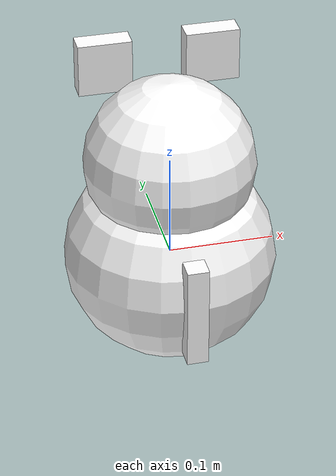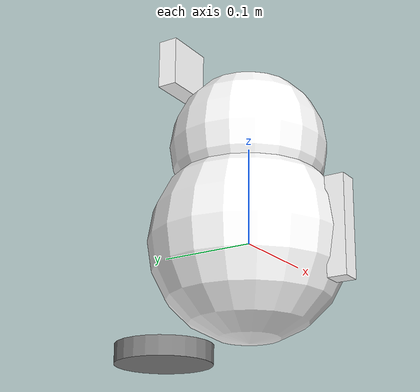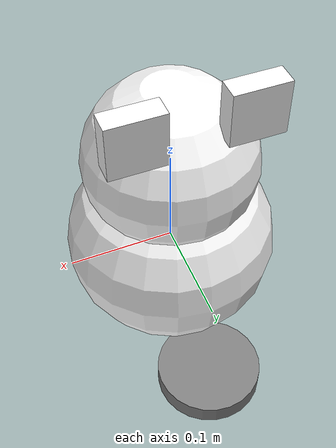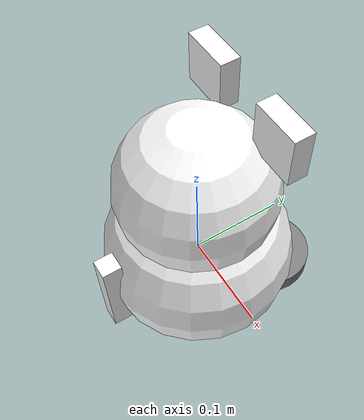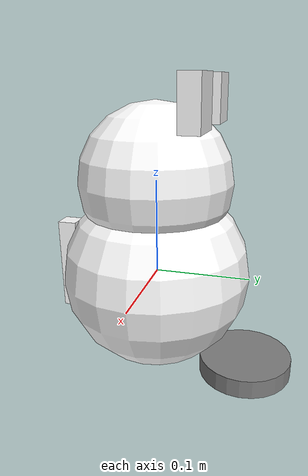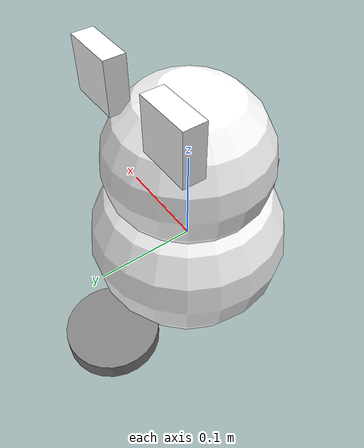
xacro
<?xml version="1.0"?>
<robot name="expressive_robot" xmlns:xacro="http://www.ros.org/wiki/xacro">
  <!-- Main body -->
  <link name="base_link">
    <visual>
      <geometry>
        <sphere radius="0.1"/>
      </geometry>
      <material name="white">
        <color rgba="1 1 1 1"/>
      </material>
    </visual>
  </link>

  <!-- Omni-directional wheels -->
  <link name="wheel_front">
    <visual>
      <geometry>
        <cylinder radius="0.05" length="0.02"/>
      </geometry>
      <material name="gray">
        <color rgba="0.5 0.5 0.5 1"/>
      </material>
    </visual>
  </link>
  <joint name="wheel_front_joint" type="continuous">
    <parent link="base_link"/>
    <child link="wheel_front"/>
    <origin xyz="0 0.1 -0.1" rpy="0 0 0"/>
    <axis xyz="0 0 1"/>
  </joint>

  <!-- Repeat for other omni-directional wheels -->

  <!-- Head with 360° turn capability -->
  <joint name="head_joint" type="continuous">
    <parent link="base_link"/>
    <child link="head"/>
    <origin xyz="0 0 0.1" rpy="0 0 0"/>
    <axis xyz="0 0 1"/>
  </joint>
  <link name="head">
    <visual>
      <geometry>
        <sphere radius="0.08"/>
      </geometry>
      <material name="white">
        <color rgba="1 1 1 1"/>
      </material>
    </visual>
  </link>

  <!-- Left ear -->
  <joint name="left_ear_joint" type="revolute">
    <parent link="head"/>
    <child link="left_ear"/>
    <origin xyz="0.05 0.05 0.08" rpy="0 0 0"/>
    <axis xyz="0 1 0"/>
    <limit lower="-1.57" upper="1.57" effort="0.1" velocity="1.0"/>
  </joint>
  <link name="left_ear">
    <visual>
      <geometry>
        <box size="0.05 0.02 0.05"/>
      </geometry>
      <material name="white">
        <color rgba="1 1 1 1"/>
      </material>
    </visual>
  </link>

  <!-- Right ear -->
  <joint name="right_ear_joint" type="revolute">
    <parent link="head"/>
    <child link="right_ear"/>
    <origin xyz="-0.05 0.05 0.08" rpy="0 0 0"/>
    <axis xyz="0 1 0"/>
    <limit lower="-1.57" upper="1.57" effort="0.1" velocity="1.0"/>
  </joint>
  <link name="right_ear">
    <visual>
      <geometry>
        <box size="0.05 0.02 0.05"/>
      </geometry>
      <material name="white">
        <color rgba="1 1 1 1"/>
      </material>
    </visual>
  </link>

  <!-- Tail -->
  <joint name="tail_joint" type="revolute">
    <parent link="base_link"/>
    <child link="tail"/>
    <origin xyz="0 -0.1 0" rpy="0 0 0"/>
    <axis xyz="0 1 0"/>
    <limit lower="-1.57" upper="1.57" effort="0.1" velocity="1.0"/>
  </joint>
  <link name="tail">
    <visual>
      <geometry>
        <box size="0.02 0.02 0.1"/>
      </geometry>
      <material name="white">
        <color rgba="1 1 1 1"/>
      </material>
    </visual>
  </link>
</robot>
